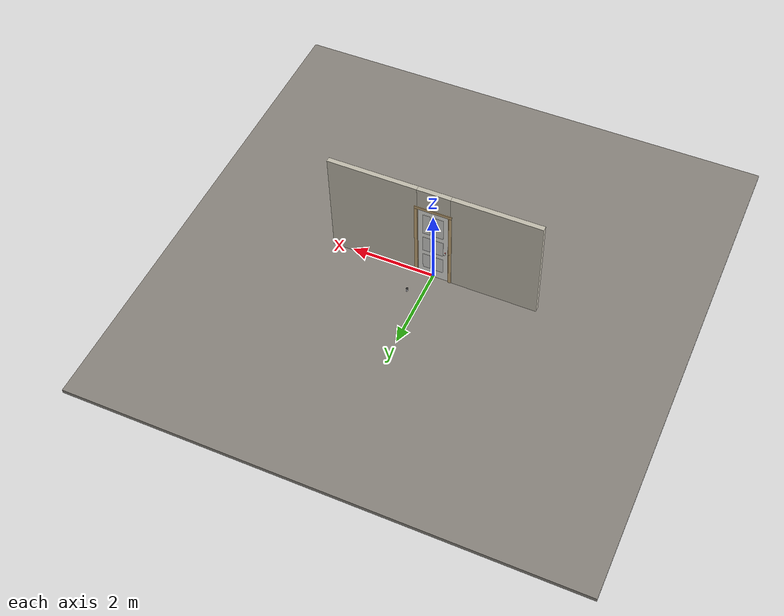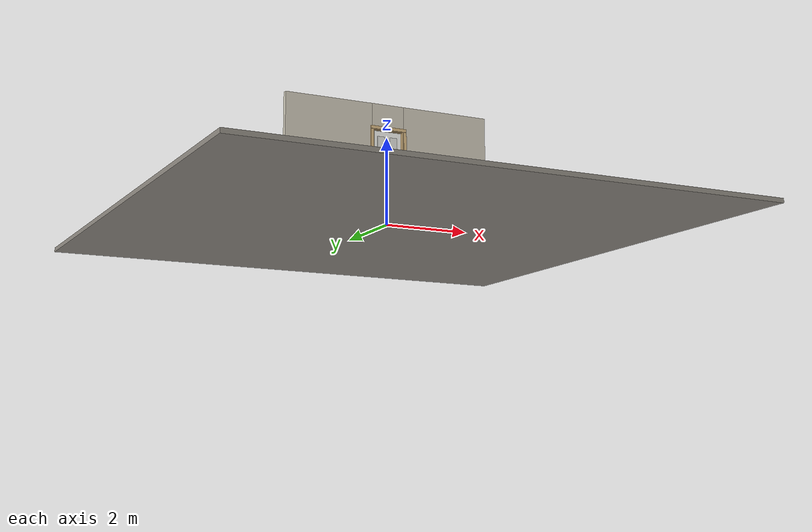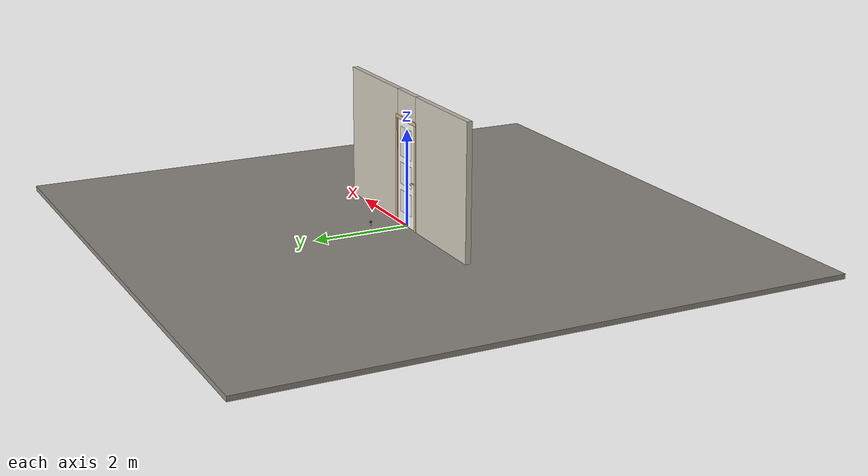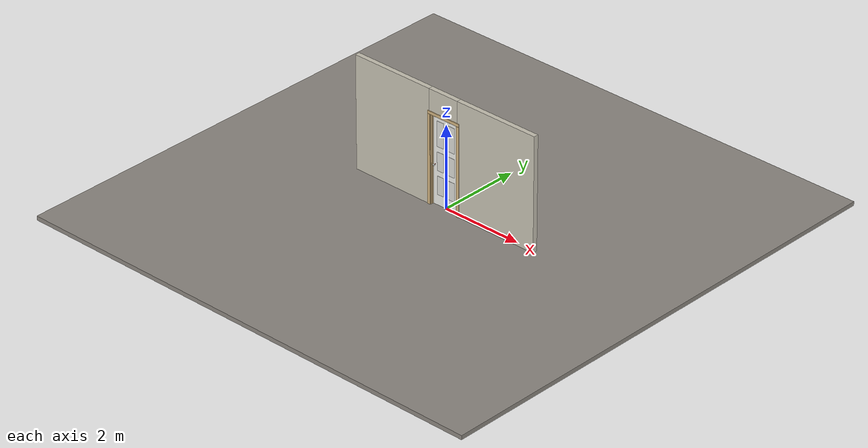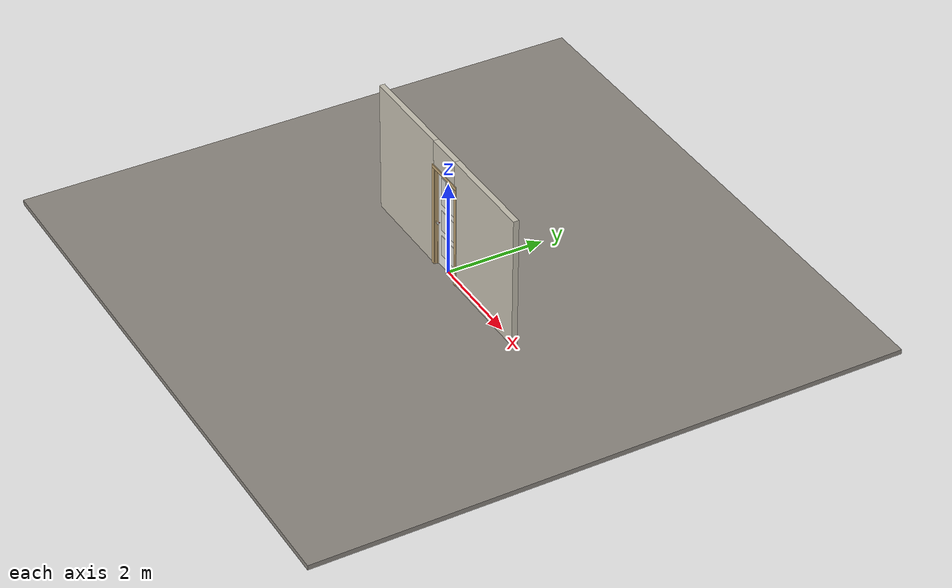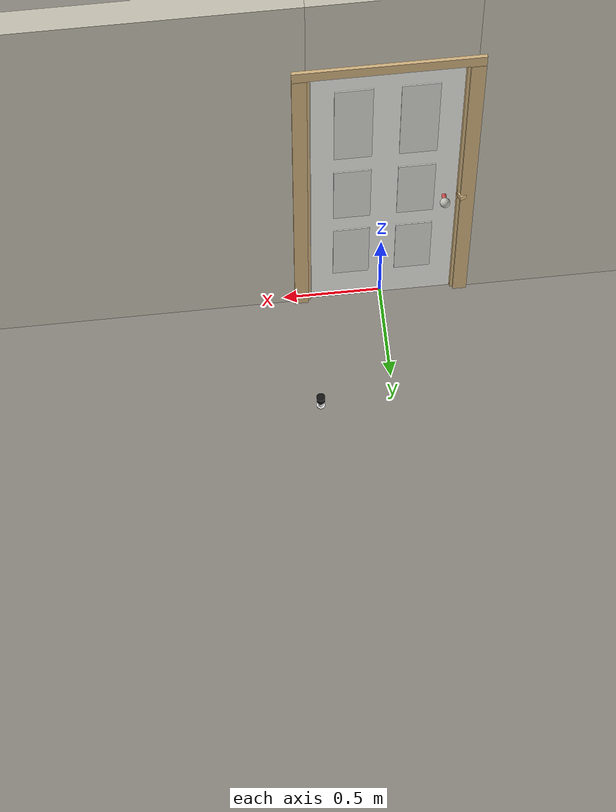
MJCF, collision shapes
<?xml version="1.0" ?>
<mujoco model="db0109_swing_single_full">
  <compiler angle="radian" meshdir="../../hardware" texturedir="../../textures" autolimits="true" inertiafromgeom="false"/>
  <option timestep="0.002" integrator="implicitfast" cone="elliptic" impratio="10" noslip_iterations="3">
    <flag multiccd="enable"/>
  </option>
  <size memory="16M"/>
  <default>
    <geom condim="4" solref="0.005 1" solimp="0.95 0.99 0.001"/>
    <joint solreflimit="0.005 1" solimplimit="0.95 0.99 0.001"/>
    <tendon solreflimit="0.005 1"/>
    <equality solref="0.002 1"/>
  </default>
  <visual>
    <headlight ambient="0.4 0.4 0.4" diffuse="0.7 0.7 0.7" specular="0.2 0.2 0.2"/>
    <quality shadowsize="4096"/>
    <map znear="0.01" zfar="60"/>
  </visual>
  <asset>
    <mesh name="hinge_96510cf394" file="hinge_96510cf394.obj"/>
    <mesh name="hinge_jamb_7fd4ca52b2" file="hinge_jamb_7fd4ca52b2.obj"/>
    <mesh name="knob_0ccd68d739" file="knob_0ccd68d739.obj"/>
    <material name="mat_floor" rgba="0.55 0.53 0.5 1" specular="0.2" shininess="0.15" reflectance="0"/>
    <material name="mat_wall" rgba="0.78 0.76 0.7 1" specular="0.2" shininess="0.1" reflectance="0"/>
    <material name="mat_leaf" rgba="0.93 0.93 0.91 1" specular="0.2" shininess="0.31" reflectance="0"/>
    <material name="mat_leaf_panel" rgba="0.856 0.856 0.837 1" specular="0.2" shininess="0.31" reflectance="0"/>
    <material name="mat_hinge" rgba="0.65 0.66 0.68 1" specular="0.74" shininess="0.5" reflectance="0.36"/>
    <material name="mat_op_hpl" rgba="0.75 0.75 0.72 1" specular="0.2" shininess="0.65" reflectance="0"/>
    <material name="mat_trim" rgba="0.85 0.66 0.3 1" specular="0.8" shininess="0.75" reflectance="0.4"/>
    <material name="mat_bolt" rgba="0.85 0.66 0.3 1" specular="0.8" shininess="0.75" reflectance="0.4"/>
    <material name="mat_frame" rgba="0.82 0.7 0.5 1" specular="0.2" shininess="0.45" reflectance="0"/>
    <material name="mat_bumper_stop" rgba="0.08 0.08 0.08 1" specular="0.2" shininess="0.1" reflectance="0"/>
    <material name="mat_stop_base" rgba="0.9 0.9 0.92 1" specular="0.8" shininess="0.9" reflectance="0.4"/>
    <texture name="skybox" type="skybox" builtin="gradient" rgb1="0.6 0.7 0.85" rgb2="0.9 0.92 0.95" width="256" height="256"/>
  </asset>
  <worldbody>
    <light name="sun" pos="1.5 -2.5 4" dir="-0.3 0.5 -0.8" directional="true" diffuse="0.8 0.8 0.8" specular="0.3 0.3 0.3" castshadow="true"/>
    <light name="fill" pos="-1.5 2.5 3" dir="0.3 -0.5 -0.7" directional="true" diffuse="0.35 0.35 0.4" castshadow="false"/>
    <camera name="robot_view" pos="0 -2.670812 1.812087" xyaxes="1 0 0 0 0.26963 0.962964" fovy="52"/>
    <camera name="far_view" pos="0 2.604812 1.812087" xyaxes="-1 0 0 0 -0.26963 0.962964" fovy="52"/>
    <camera name="iso" pos="-2.004737 -2.248762 2.234138" xyaxes="0.741536 -0.670913 0 0.242917 0.268487 0.932151" fovy="46"/>
    <camera name="detail_handle" pos="-0.115 -0.86375 1.245" xyaxes="0.97561 0.219512 0 -0.070934 0.315262 0.94635" fovy="38"/>
    <geom name="floor" type="box" size="6 6 0.05" pos="0 0 -0.05" material="mat_floor" group="0" contype="1" conaffinity="1" friction="0.8 0.005 0.0001" density="2400"/>
    <geom name="wall_left" type="box" size="1.046 0.0575 1.3735" pos="-1.454 -0.033 1.3735" material="mat_wall" group="0" contype="1" conaffinity="1" friction="0.6 0.005 0.0001" density="800"/>
    <geom name="wall_right" type="box" size="1.061 0.0575 1.3735" pos="1.439 -0.033 1.3735" material="mat_wall" group="0" contype="1" conaffinity="1" friction="0.6 0.005 0.0001" density="800"/>
    <geom name="wall_header" type="box" size="0.393 0.0575 0.2755" pos="-0.015 -0.033 2.4715" material="mat_wall" group="0" contype="1" conaffinity="1" friction="0.6 0.005 0.0001" density="800"/>
    <geom name="hinge_0_jamb" type="mesh" mesh="hinge_jamb_7fd4ca52b2" pos="0.356 0.0245 0.259" quat="0 0 0 1" material="mat_hinge" group="1" contype="0" conaffinity="0" density="7850"/>
    <geom name="hinge_1_jamb" type="mesh" mesh="hinge_jamb_7fd4ca52b2" pos="0.356 0.0245 1.076" quat="0 0 0 1" material="mat_hinge" group="1" contype="0" conaffinity="0" density="7850"/>
    <geom name="hinge_2_jamb" type="mesh" mesh="hinge_jamb_7fd4ca52b2" pos="0.356 0.0245 1.963" quat="0 0 0 1" material="mat_hinge" group="1" contype="0" conaffinity="0" density="7850"/>
    <geom name="jamb_hinge" type="box" size="0.0095 0.0575 1.0735" pos="0.3685 -0.033 1.0735" material="mat_frame" group="0" contype="1" conaffinity="1" friction="0.6 0.005 0.0001" density="400"/>
    <geom name="strike_965_wall_n" type="box" size="0.0245 0.041325 0.0167" pos="-0.3835 -0.049175 0.965" material="mat_frame" group="0" contype="1" conaffinity="1" friction="0.6 0.005 0.0001" density="400"/>
    <geom name="strike_965_wall_p" type="box" size="0.0245 0.008 0.0167" pos="-0.3835 0.01585 0.965" material="mat_frame" group="0" contype="1" conaffinity="1" friction="0.6 0.005 0.0001" density="400"/>
    <geom name="strike_965_ramp" type="box" size="0.0245 0.01649 0.0167" pos="-0.388136 0.028673 0.965" quat="0.977148 0 0 0.212558" material="mat_frame" group="0" contype="1" conaffinity="1" friction="0.12 0.005 0.0001" density="400"/>
    <geom name="strike_965_back" type="box" size="0.01615 0.00785 0.0167" pos="-0.39185 0 0.965" material="mat_frame" group="0" contype="1" conaffinity="1" friction="0.6 0.005 0.0001" density="400"/>
    <geom name="jamb_strike_0" type="box" size="0.0245 0.0575 0.47415" pos="-0.3835 -0.033 0.47415" material="mat_frame" group="0" contype="1" conaffinity="1" friction="0.6 0.005 0.0001" density="400"/>
    <geom name="jamb_strike_1" type="box" size="0.0245 0.0575 0.58265" pos="-0.3835 -0.033 1.56435" material="mat_frame" group="0" contype="1" conaffinity="1" friction="0.6 0.005 0.0001" density="400"/>
    <geom name="jamb_head" type="box" size="0.393 0.0575 0.0095" pos="-0.015 -0.033 2.1565" material="mat_frame" group="0" contype="1" conaffinity="1" friction="0.6 0.005 0.0001" density="400"/>
    <geom name="head_stud" type="box" size="0.393 0.0575 0.015" pos="-0.015 -0.033 2.181" material="mat_wall" group="0" contype="1" conaffinity="1" friction="0.6 0.005 0.0001" density="500"/>
    <geom name="stop_hinge" type="box" size="0.0055 0.016 1.0735" pos="0.3535 -0.034 1.0735" material="mat_frame" group="0" contype="1" conaffinity="1" friction="0.6 0.005 0.0001" density="400"/>
    <geom name="stop_strike" type="box" size="0.0055 0.016 1.0735" pos="-0.3535 -0.034 1.0735" material="mat_frame" group="0" contype="1" conaffinity="1" friction="0.6 0.005 0.0001" density="400"/>
    <geom name="stop_head" type="box" size="0.359 0.016 0.0055" pos="0 -0.034 2.1415" material="mat_frame" group="0" contype="1" conaffinity="1" friction="0.6 0.005 0.0001" density="400"/>
    <geom name="casing_l_n" type="box" size="0.035 0.008 1.083" pos="-0.408 -0.0985 1.0735" material="mat_frame" group="2" contype="0" conaffinity="0" density="400"/>
    <geom name="casing_r_n" type="box" size="0.035 0.008 1.083" pos="0.408 -0.0985 1.0735" material="mat_frame" group="2" contype="0" conaffinity="0" density="400"/>
    <geom name="casing_h_n" type="box" size="0.443 0.008 0.035" pos="0 -0.0985 2.196" material="mat_frame" group="2" contype="0" conaffinity="0" density="400"/>
    <geom name="casing_l_p" type="box" size="0.035 0.008 1.083" pos="-0.408 0.0325 1.0735" material="mat_frame" group="2" contype="0" conaffinity="0" density="400"/>
    <geom name="casing_r_p" type="box" size="0.035 0.008 1.083" pos="0.408 0.0325 1.0735" material="mat_frame" group="2" contype="0" conaffinity="0" density="400"/>
    <geom name="casing_h_p" type="box" size="0.443 0.008 0.035" pos="0 0.0325 2.196" material="mat_frame" group="2" contype="0" conaffinity="0" density="400"/>
    <geom name="door_stop_base" type="cylinder" size="0.022 0.003" pos="0.372 0.62885 0.003" material="mat_stop_base" group="0" contype="1" conaffinity="1" friction="0.6 0.005 0.0001" density="7850"/>
    <geom name="door_stop_post" type="cylinder" size="0.012 0.0245" pos="0.372 0.62885 0.0305" material="mat_stop_base" group="0" contype="1" conaffinity="1" friction="0.6 0.005 0.0001" density="7850"/>
    <geom name="door_stop_bumper" type="cylinder" size="0.022 0.02" pos="0.372 0.62885 0.075" material="mat_bumper_stop" group="0" contype="1" conaffinity="1" friction="0.6 0.005 0.0001" density="1100"/>
    <site name="approach_point" pos="0 -1.5 0" quat="1 0 0 0" size="0.05" rgba="0.2 0.9 0.2 0.5" group="4"/>
    <site name="goal_point" pos="0 1.5 0" quat="1 0 0 0" size="0.05" rgba="0.2 0.9 0.2 0.5" group="4"/>
    <site name="door_plane_center" pos="0 0 1.0735" quat="1 0 0 0" size="0.02" rgba="0.2 0.9 0.2 0.5" group="4"/>
    <body name="leaf" pos="0.359 0 0">
      <inertial pos="-0.346053 0.00053 1.076756" mass="10.927256" quat="0.499246 0.501251 -0.498732 0.500766" diaginertia="0.494294845 4.184561123 4.67642539"/>
      <joint name="leaf_hinge" type="hinge" axis="0 0 -1" pos="-0.003 0.0245 0" limited="true" range="0 1.570796" damping="0.14849" frictionloss="0.10783" armature="0.02"/>
      <geom name="leaf_slab" type="box" size="0.3555 0.0175 1.067" pos="-0.3585 0 1.076" material="mat_leaf" group="0" contype="1" conaffinity="1" friction="0.35 0.005 0.0001" density="1"/>
      <geom name="leaf_panel_0_n" type="box" size="0.09025 0.003 0.221884" pos="-0.20325 -0.0205 0.485624" material="mat_leaf_panel" group="1" contype="0" conaffinity="0" density="1"/>
      <geom name="leaf_panel_0_p" type="box" size="0.09025 0.003 0.221884" pos="-0.20325 0.0205 0.485624" material="mat_leaf_panel" group="1" contype="0" conaffinity="0" density="1"/>
      <geom name="leaf_panel_1_n" type="box" size="0.09025 0.003 0.221884" pos="-0.51375 -0.0205 0.485624" material="mat_leaf_panel" group="1" contype="0" conaffinity="0" density="1"/>
      <geom name="leaf_panel_1_p" type="box" size="0.09025 0.003 0.221884" pos="-0.51375 0.0205 0.485624" material="mat_leaf_panel" group="1" contype="0" conaffinity="0" density="1"/>
      <geom name="leaf_panel_2_n" type="box" size="0.09025 0.003 0.221884" pos="-0.20325 -0.0205 1.059392" material="mat_leaf_panel" group="1" contype="0" conaffinity="0" density="1"/>
      <geom name="leaf_panel_2_p" type="box" size="0.09025 0.003 0.221884" pos="-0.20325 0.0205 1.059392" material="mat_leaf_panel" group="1" contype="0" conaffinity="0" density="1"/>
      <geom name="leaf_panel_3_n" type="box" size="0.09025 0.003 0.221884" pos="-0.51375 -0.0205 1.059392" material="mat_leaf_panel" group="1" contype="0" conaffinity="0" density="1"/>
      <geom name="leaf_panel_3_p" type="box" size="0.09025 0.003 0.221884" pos="-0.51375 0.0205 1.059392" material="mat_leaf_panel" group="1" contype="0" conaffinity="0" density="1"/>
      <geom name="leaf_panel_4_n" type="box" size="0.09025 0.003 0.302512" pos="-0.20325 -0.0205 1.713788" material="mat_leaf_panel" group="1" contype="0" conaffinity="0" density="1"/>
      <geom name="leaf_panel_4_p" type="box" size="0.09025 0.003 0.302512" pos="-0.20325 0.0205 1.713788" material="mat_leaf_panel" group="1" contype="0" conaffinity="0" density="1"/>
      <geom name="leaf_panel_5_n" type="box" size="0.09025 0.003 0.302512" pos="-0.51375 -0.0205 1.713788" material="mat_leaf_panel" group="1" contype="0" conaffinity="0" density="1"/>
      <geom name="leaf_panel_5_p" type="box" size="0.09025 0.003 0.302512" pos="-0.51375 0.0205 1.713788" material="mat_leaf_panel" group="1" contype="0" conaffinity="0" density="1"/>
      <geom name="hinge_0" type="mesh" mesh="hinge_96510cf394" pos="-0.003 0.0245 0.259" quat="0 0 0 1" material="mat_hinge" group="1" contype="0" conaffinity="0" density="7850"/>
      <geom name="hinge_1" type="mesh" mesh="hinge_96510cf394" pos="-0.003 0.0245 1.076" quat="0 0 0 1" material="mat_hinge" group="1" contype="0" conaffinity="0" density="7850"/>
      <geom name="hinge_2" type="mesh" mesh="hinge_96510cf394" pos="-0.003 0.0245 1.963" quat="0 0 0 1" material="mat_hinge" group="1" contype="0" conaffinity="0" density="7850"/>
      <geom name="leaf_latch_bolt_faceplate" type="box" size="0.0006 0.01235 0.0267" pos="-0.7134 0 0.965" material="mat_bolt" group="1" contype="0" conaffinity="0" density="8500"/>
      <site name="leaf_edge_mid" pos="-0.714 0 1.067" quat="1 0 0 0" size="0.02" rgba="0.2 0.9 0.2 0.5" group="4"/>
      <body name="leaf_handle" pos="-0.654 0 0.965">
        <inertial pos="0 0 0" mass="1.150081" quat="0.707107 0 0 -0.707107" diaginertia="0.000298658 0.003840959 0.003840959"/>
        <joint name="leaf_handle_hinge" type="hinge" axis="0 1 0" limited="true" range="0 0.85" damping="0.128366" frictionloss="0.032" stiffness="0.4" springref="-0.5" armature="0.01"/>
        <geom name="leaf_handle_spindle" type="cylinder" size="0.006 0.0255" pos="0 0 0" quat="0.707107 -0.707107 0 0" material="mat_op_hpl" group="1" contype="0" conaffinity="0" density="7850"/>
        <geom name="leaf_handle_knob_n" type="mesh" mesh="knob_0ccd68d739" pos="0 -0.0175 0" quat="0 0 -0.707107 0.707107" material="mat_op_hpl" group="1" contype="0" conaffinity="0" density="3000"/>
        <geom name="leaf_handle_knob_col_n" type="sphere" size="0.02475" pos="0 -0.06375 0" material="mat_op_hpl" group="0" contype="1" conaffinity="1" friction="0.9 0.01 0.0001" density="3000"/>
        <geom name="leaf_handle_knob_neck_n" type="cylinder" size="0.011 0.012" pos="0 -0.0295 0" quat="0.707107 -0.707107 0 0" material="mat_op_hpl" group="3" contype="1" conaffinity="1" rgba="0.8 0.3 0.3 0.25" friction="0.6 0.005 0.0001" density="3000"/>
        <geom name="leaf_handle_knob_p" type="mesh" mesh="knob_0ccd68d739" pos="0 0.0175 0" quat="0 0 0.707107 0.707107" material="mat_op_hpl" group="1" contype="0" conaffinity="0" density="3000"/>
        <geom name="leaf_handle_knob_col_p" type="sphere" size="0.02475" pos="0 0.06375 0" material="mat_op_hpl" group="0" contype="1" conaffinity="1" friction="0.9 0.01 0.0001" density="3000"/>
        <geom name="leaf_handle_knob_neck_p" type="cylinder" size="0.011 0.012" pos="0 0.0295 0" quat="0.707107 -0.707107 0 0" material="mat_op_hpl" group="3" contype="1" conaffinity="1" rgba="0.8 0.3 0.3 0.25" friction="0.6 0.005 0.0001" density="3000"/>
        <site name="leaf_handle_grip_n" pos="0 -0.06375 0" quat="1 0 0 0" size="0.012" rgba="0.2 0.9 0.2 0.5" group="4"/>
        <site name="leaf_handle_grip_p" pos="0 0.06375 0" quat="1 0 0 0" size="0.012" rgba="0.2 0.9 0.2 0.5" group="4"/>
      </body>
      <body name="leaf_latch_bolt" pos="-0.714 0 0.965">
        <inertial pos="0.00865 0 0" mass="0.041419" quat="0.92388 0.382683 0 0" diaginertia="0.000000798 0.000005598 0.000005598"/>
        <joint name="leaf_latch_bolt_slide" type="slide" axis="1 0 0" limited="true" range="0 0.0127" damping="2" frictionloss="0.3" stiffness="300" springref="-0.008333" armature="0.1"/>
        <geom name="leaf_latch_bolt_capsule" type="capsule" size="0.00635 0.015" pos="0.00865 0 0" quat="0.707107 0 -0.707107 0" material="mat_bolt" group="0" contype="1" conaffinity="1" friction="0.2 0.005 0.0001" density="8500"/>
      </body>
    </body>
  </worldbody>
  <tendon>
    <fixed name="leaf_latch_bolt_coupling" limited="true" range="0 10">
      <joint joint="leaf_latch_bolt_slide" coef="1"/>
      <joint joint="leaf_handle_hinge" coef="-0.016933"/>
    </fixed>
  </tendon>
  <sensor>
    <jointpos name="leaf_hinge_pos" joint="leaf_hinge"/>
    <jointvel name="leaf_hinge_vel" joint="leaf_hinge"/>
    <jointpos name="leaf_handle_hinge_pos" joint="leaf_handle_hinge"/>
    <jointvel name="leaf_handle_hinge_vel" joint="leaf_handle_hinge"/>
    <jointpos name="leaf_latch_bolt_slide_pos" joint="leaf_latch_bolt_slide"/>
    <jointvel name="leaf_latch_bolt_slide_vel" joint="leaf_latch_bolt_slide"/>
  </sensor>
</mujoco>
